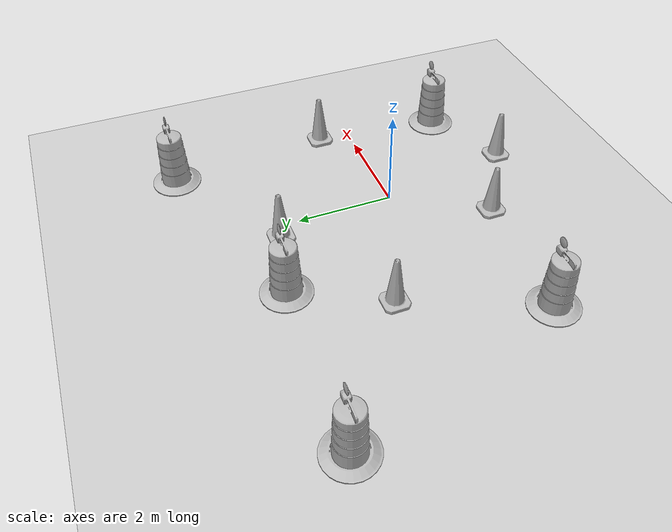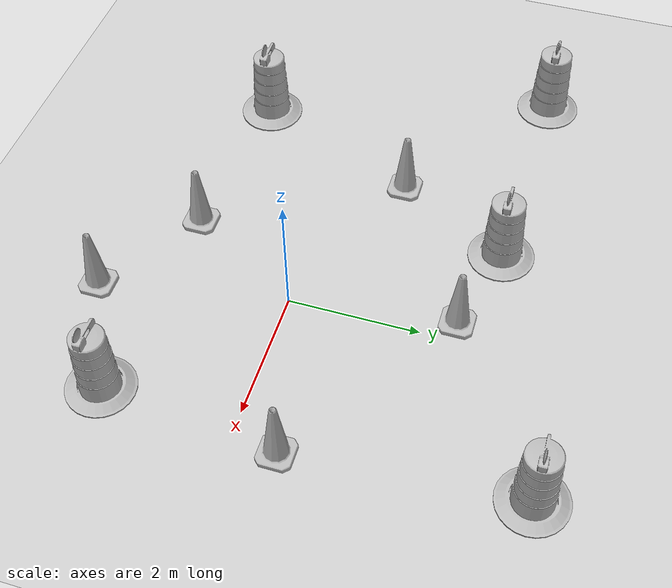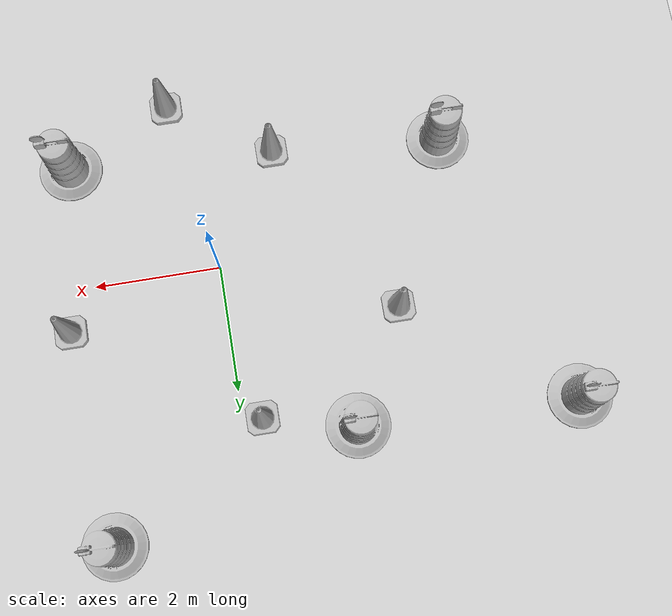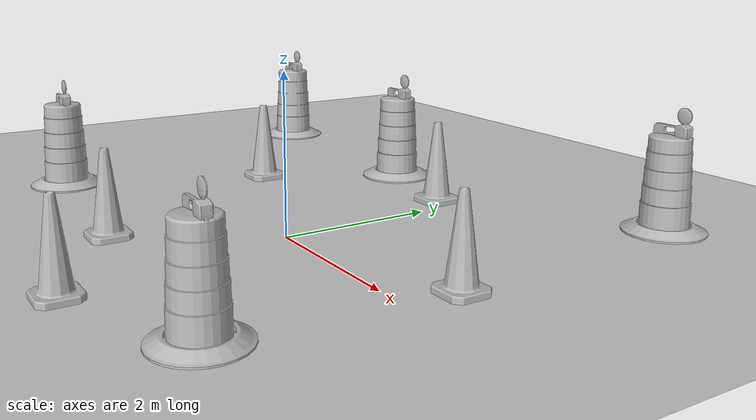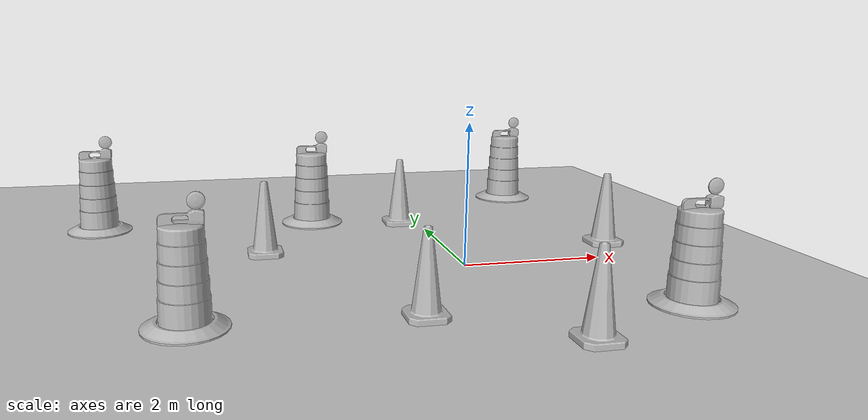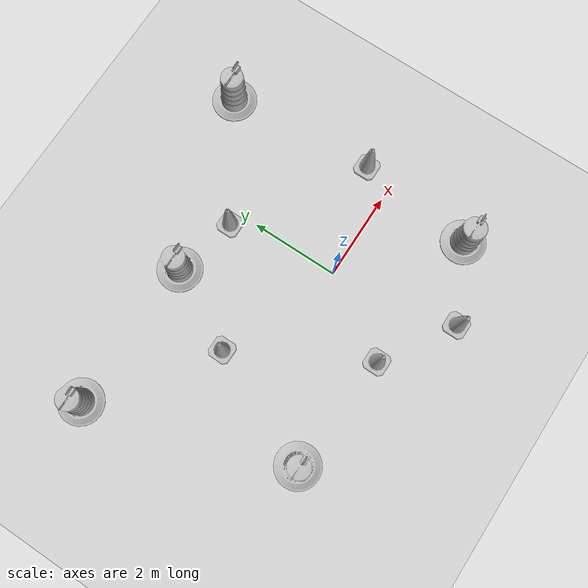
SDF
<sdf version="1.7">
 <world name="default">
  <light name="sun" type="directional">
   <pose>0 0 10 0 -0 0</pose>
   <diffuse>0.8 0.8 0.8 1</diffuse>
   <specular>0.2 0.2 0.2 1</specular>
   <attenuation>
    <range>1000</range>
    <constant>0.9</constant>
    <linear>0.01</linear>
    <quadratic>0.001</quadratic>
   </attenuation>
   <direction>-0.5 0.1 -0.9</direction>
   <spot><inner_angle>0</inner_angle><outer_angle>0</outer_angle><falloff>0</falloff></spot>
  </light>
  <model name="ground_plane">
   <static>1</static>
   <link name="link">
    <collision name="collision">
     <geometry><plane><normal>0 0 1</normal><size>100 100</size></plane></geometry>
     <surface>
      <contact><collide_bitmask>65535</collide_bitmask></contact>
      <friction><ode><mu>100</mu><mu2>50</mu2></ode></friction>
     </surface>
    </collision>
    <visual name="visual">
     <cast_shadows>0</cast_shadows>
     <geometry><plane><normal>0 0 1</normal><size>100 100</size></plane></geometry>
     <material>
      <script><uri>file://media/materials/scripts/gazebo.material</uri><name>Gazebo/Grey</name></script>
     </material>
    </visual>
   </link>
  </model>
  <gravity>0 0 -9.8</gravity>
  <magnetic_field>6e-06 2.3e-05 -4.2e-05</magnetic_field>
  <atmosphere type="adiabatic"/>
  <physics type="ode">
   <max_step_size>0.001</max_step_size>
   <real_time_factor>1</real_time_factor>
   <real_time_update_rate>1000</real_time_update_rate>
  </physics>
  <scene><ambient>0.4 0.4 0.4 1</ambient><background>0.7 0.7 0.7 1</background><shadows>1</shadows></scene>
  <audio><device>default</device></audio>
  <spherical_coordinates>
   <surface_model>EARTH_WGS84</surface_model>
   <latitude_deg>0</latitude_deg>
   <longitude_deg>0</longitude_deg>
   <elevation>0</elevation>
   <heading_deg>0</heading_deg>
  </spherical_coordinates>
  <model name="Construction Cone">
   <link name="link">
    <collision name="collision">
     <geometry>
      <mesh><scale>10 10 10</scale><uri>model://construction_cone/meshes/construction_cone.dae</uri></mesh>
     </geometry>
    </collision>
    <visual name="visual">
     <geometry>
      <mesh><scale>10 10 10</scale><uri>model://construction_cone/meshes/construction_cone.dae</uri></mesh>
     </geometry>
    </visual>
    <inertial>
     <inertia><ixx>1</ixx><ixy>0</ixy><ixz>0</ixz><iyy>1</iyy><iyz>0</iyz><izz>1</izz></inertia>
     <mass>1</mass>
    </inertial>
   </link>
   <pose>-2.69984 1.06359 -0 0 -1e-06 0</pose>
  </model>
  <model name="Construction Cone_0">
   <link name="link">
    <collision name="collision">
     <geometry>
      <mesh><scale>10 10 10</scale><uri>model://construction_cone/meshes/construction_cone.dae</uri></mesh>
     </geometry>
    </collision>
    <visual name="visual">
     <geometry>
      <mesh><scale>10 10 10</scale><uri>model://construction_cone/meshes/construction_cone.dae</uri></mesh>
     </geometry>
    </visual>
    <inertial>
     <inertia><ixx>1</ixx><ixy>0</ixy><ixz>0</ixz><iyy>1</iyy><iyz>0</iyz><izz>1</izz></inertia>
     <mass>1</mass>
    </inertial>
   </link>
   <pose>-1.10007 -1.81026 -0 0 -1e-06 0</pose>
  </model>
  <model name="Construction Cone_1">
   <link name="link">
    <collision name="collision">
     <geometry>
      <mesh><scale>10 10 10</scale><uri>model://construction_cone/meshes/construction_cone.dae</uri></mesh>
     </geometry>
    </collision>
    <visual name="visual">
     <geometry>
      <mesh><scale>10 10 10</scale><uri>model://construction_cone/meshes/construction_cone.dae</uri></mesh>
     </geometry>
    </visual>
    <inertial>
     <inertia><ixx>1</ixx><ixy>0</ixy><ixz>0</ixz><iyy>1</iyy><iyz>0</iyz><izz>1</izz></inertia>
     <mass>1</mass>
    </inertial>
   </link>
   <pose>-0.31422 2.47879 -1e-05 -0 -0 -0</pose>
  </model>
  <model name="Construction Cone_2">
   <link name="link">
    <collision name="collision">
     <geometry>
      <mesh><scale>10 10 10</scale><uri>model://construction_cone/meshes/construction_cone.dae</uri></mesh>
     </geometry>
    </collision>
    <visual name="visual">
     <geometry>
      <mesh><scale>10 10 10</scale><uri>model://construction_cone/meshes/construction_cone.dae</uri></mesh>
     </geometry>
    </visual>
    <inertial>
     <inertia><ixx>1</ixx><ixy>0</ixy><ixz>0</ixz><iyy>1</iyy><iyz>0</iyz><izz>1</izz></inertia>
     <mass>1</mass>
    </inertial>
   </link>
   <pose>2.46286 0.672724 -0 -0 -0 -0</pose>
  </model>
  <model name="Construction Barrel">
   <link name="link">
    <inertial>
     <pose>0 0 0.4 0 -0 0</pose>
     <mass>500</mass>
     <inertia><ixx>51.2096</ixx><iyy>51.2096</iyy><izz>25</izz><ixy>0</ixy><ixz>0</ixz><iyz>0</iyz></inertia>
    </inertial>
    <collision name="collision">
     <geometry><mesh><uri>model://construction_barrel/meshes/construction_barrel.dae</uri></mesh></geometry>
    </collision>
    <visual name="visual">
     <geometry><mesh><uri>model://construction_barrel/meshes/construction_barrel.dae</uri></mesh></geometry>
    </visual>
   </link>
   <pose>-3.81971 -1.58881 0 0 0 -1.2e-05</pose>
  </model>
  <model name="Construction Barrel_0">
   <link name="link">
    <inertial>
     <pose>0 0 0.4 0 -0 0</pose>
     <mass>500</mass>
     <inertia><ixx>51.2096</ixx><iyy>51.2096</iyy><izz>25</izz><ixy>0</ixy><ixz>0</ixz><iyz>0</iyz></inertia>
    </inertial>
    <collision name="collision">
     <geometry><mesh><uri>model://construction_barrel/meshes/construction_barrel.dae</uri></mesh></geometry>
    </collision>
    <visual name="visual">
     <geometry><mesh><uri>model://construction_barrel/meshes/construction_barrel.dae</uri></mesh></geometry>
    </visual>
   </link>
   <pose>2.16954 4.04797 -2e-06 -7e-06 -4e-06 -1e-05</pose>
  </model>
  <model name="Construction Barrel_1">
   <link name="link">
    <inertial>
     <pose>0 0 0.4 0 -0 0</pose>
     <mass>500</mass>
     <inertia><ixx>51.2096</ixx><iyy>51.2096</iyy><izz>25</izz><ixy>0</ixy><ixz>0</ixz><iyz>0</iyz></inertia>
    </inertial>
    <collision name="collision">
     <geometry><mesh><uri>model://construction_barrel/meshes/construction_barrel.dae</uri></mesh></geometry>
    </collision>
    <visual name="visual">
     <geometry><mesh><uri>model://construction_barrel/meshes/construction_barrel.dae</uri></mesh></geometry>
    </visual>
   </link>
   <pose>-5.2338 2.92463 -0 0 0 -9e-06</pose>
  </model>
  <model name="Construction Barrel_2">
   <link name="link">
    <inertial>
     <pose>0 0 0.4 0 -0 0</pose>
     <mass>500</mass>
     <inertia><ixx>51.2096</ixx><iyy>51.2096</iyy><izz>25</izz><ixy>0</ixy><ixz>0</ixz><iyz>0</iyz></inertia>
    </inertial>
    <collision name="collision">
     <geometry><mesh><uri>model://construction_barrel/meshes/construction_barrel.dae</uri></mesh></geometry>
    </collision>
    <visual name="visual">
     <geometry><mesh><uri>model://construction_barrel/meshes/construction_barrel.dae</uri></mesh></geometry>
    </visual>
   </link>
   <pose>-1.75462 2.82686 0 0 1e-06 -9e-06</pose>
  </model>
  <model name="Construction Barrel_3">
   <link name="link">
    <inertial>
     <pose>0 0 0.4 0 -0 0</pose>
     <mass>500</mass>
     <inertia><ixx>51.2096</ixx><iyy>51.2096</iyy><izz>25</izz><ixy>0</ixy><ixz>0</ixz><iyz>0</iyz></inertia>
    </inertial>
    <collision name="collision">
     <geometry><mesh><uri>model://construction_barrel/meshes/construction_barrel.dae</uri></mesh></geometry>
    </collision>
    <visual name="visual">
     <geometry><mesh><uri>model://construction_barrel/meshes/construction_barrel.dae</uri></mesh></geometry>
    </visual>
   </link>
   <pose>2.17176 -2.00297 -0 0 0 -7e-06</pose>
  </model>
  <model name="Construction Cone_3">
   <link name="link">
    <collision name="collision">
     <geometry>
      <mesh><scale>10 10 10</scale><uri>model://construction_cone/meshes/construction_cone.dae</uri></mesh>
     </geometry>
    </collision>
    <visual name="visual">
     <geometry>
      <mesh><scale>10 10 10</scale><uri>model://construction_cone/meshes/construction_cone.dae</uri></mesh>
     </geometry>
    </visual>
    <inertial>
     <inertia><ixx>1</ixx><ixy>0</ixy><ixz>0</ixz><iyy>1</iyy><iyz>0</iyz><izz>1</izz></inertia>
     <mass>1</mass>
    </inertial>
   </link>
   <pose>0.504157 -2.82036 -0 0 -1e-06 0</pose>
  </model>
 </world>
</sdf>
